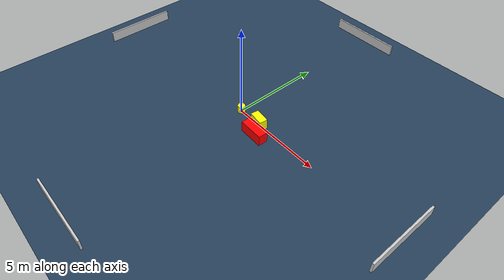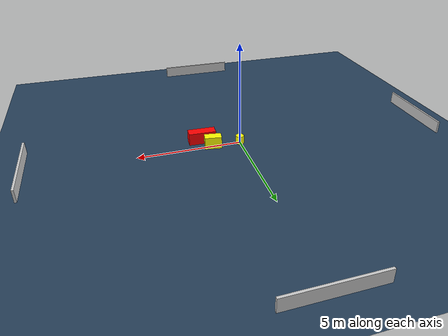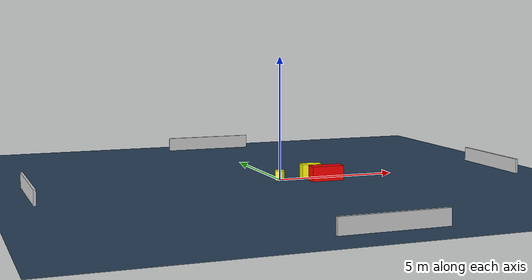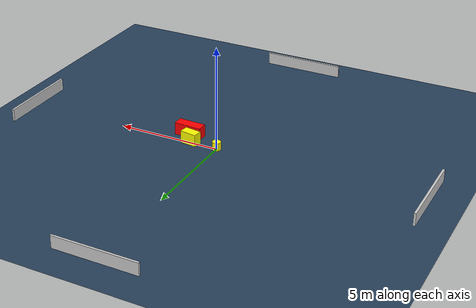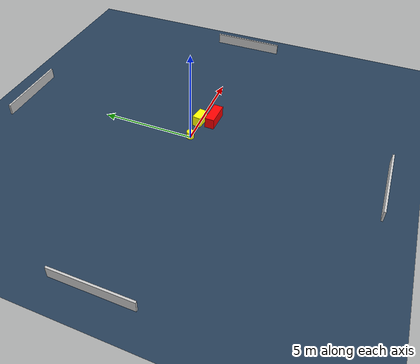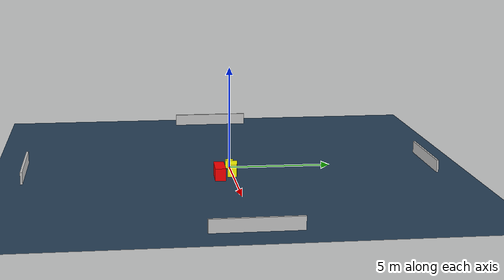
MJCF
<?xml version="1.0" ?>
<mujoco model="generated_environment">
  <option timestep="0.01" integrator="RK4" cone="elliptic"/>
  <default>
    <geom density="1"/>
  </default>
  <asset>
    <texture builtin="gradient" height="3072" name="skybox" rgb1="0.3 0.5 0.7" rgb2="0 0 0" type="skybox" width="512"/>
    <texture builtin="checker" height="300" name="groundplane" rgb1="0.2 0.3 0.4" rgb2="0.1 0.2 0.3" type="2d" width="300"/>
    <material name="groundplane" reflectance="0.2" texrepeat="5 5" texture="groundplane"/>
  </asset>
  <worldbody>
    <light dir="0 0 -1" directional="true" pos="0 0 1.5"/>
    <geom condim="3" friction="0.5 0.005 0.001" material="groundplane" name="floor" pos="0 0 0" size="0 0 0.05" type="plane"/>
    <body name="walls">
      <geom name="wall_1" condim="4" pos="-10.0 0.0 0.3" rgba="0.800000011920929 0.800000011920929 0.800000011920929 1.0" size="0.05 2.0 0.3" type="box"/>
      <geom name="wall_2" condim="4" pos="10.0 0.0 0.3" rgba="0.800000011920929 0.800000011920929 0.800000011920929 1.0" size="0.05 2.0 0.3" type="box"/>
      <geom name="wall_3" condim="4" pos="0.0 -10.0 0.3" rgba="0.800000011920929 0.800000011920929 0.800000011920929 1.0" size="2.0 0.05 0.3" type="box"/>
      <geom name="wall_4" condim="4" pos="0.0 10.0 0.3" rgba="0.800000011920929 0.800000011920929 0.800000011920929 1.0" size="2.0 0.05 0.3" type="box"/>
    </body>
    <body name="robot">
      <joint name="joint_x" type="slide" pos="0 0 0" axis="1 0 0"/>
      <joint name="joint_y" type="slide" pos="0 0 0" axis="0 1 0"/>
      <geom name="robot" type="cylinder" pos="0.0 0.0 0.2" size="0.2 0.2 0.0" mass="5.0" friction="1.0 0.005 0.0001" condim="4" rgba="1.0 1.0 0.0 1.0"/>
    </body>
    <body name="obstacle_1_movable">
      <geom name="obstacle_1_movable" condim="4" pos="1.3585717357575677 -0.004853755731523642 0.3" euler="0 0 261.9090108842932" friction="0.0 0.005 0.001" rgba="1.0 1.0 0.0 1.0" size="0.2224099140767261 0.40523734378643494 0.3" type="box" mass="0.1"/>
      <joint type="free"/>
    </body>
    <body name="obstacle_2_static">
      <geom name="obstacle_2_static" condim="4" pos="1.7575122859997812 -0.6670929866122868 0.3" euler="0 0 358.1440999387366" friction="0.0 0.005 0.001" rgba="1.0 0.0 0.0 1.0" size="0.6672233816218066 0.2531801183143103 0.3" type="box"/>
    </body>
  </worldbody>
  <actuator>
    <motor name="actuator_x" joint="joint_x" gear="1" ctrlrange="-1 1"/>
    <motor name="actuator_y" joint="joint_y" gear="1" ctrlrange="-1 1"/>
  </actuator>
</mujoco>
